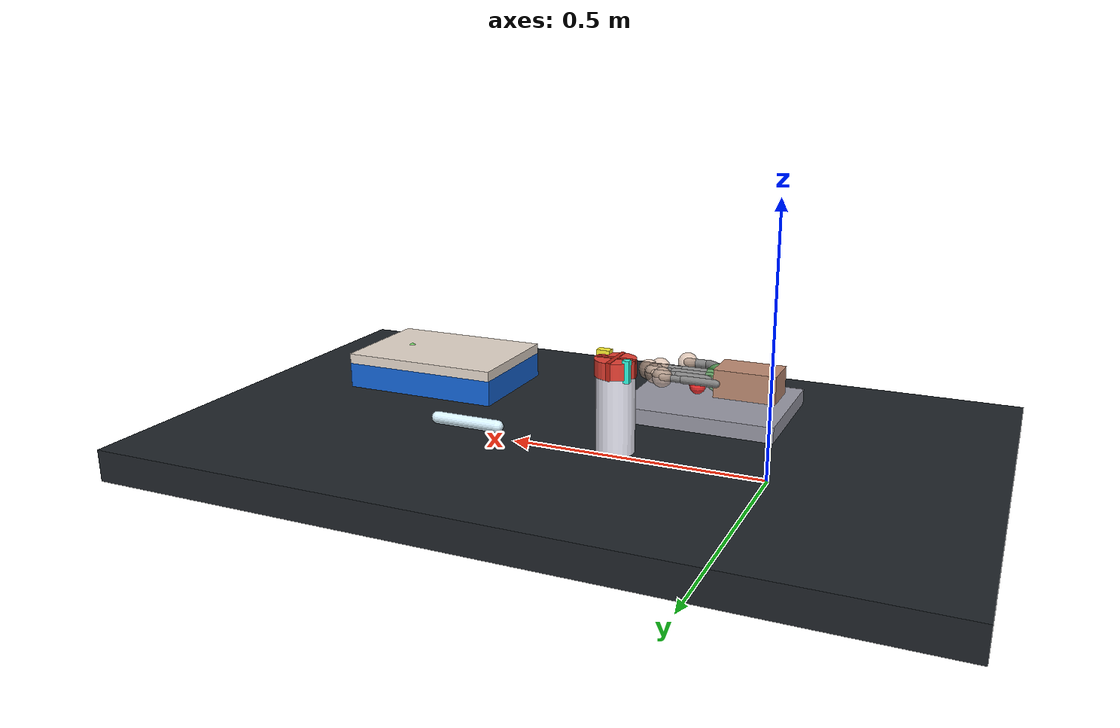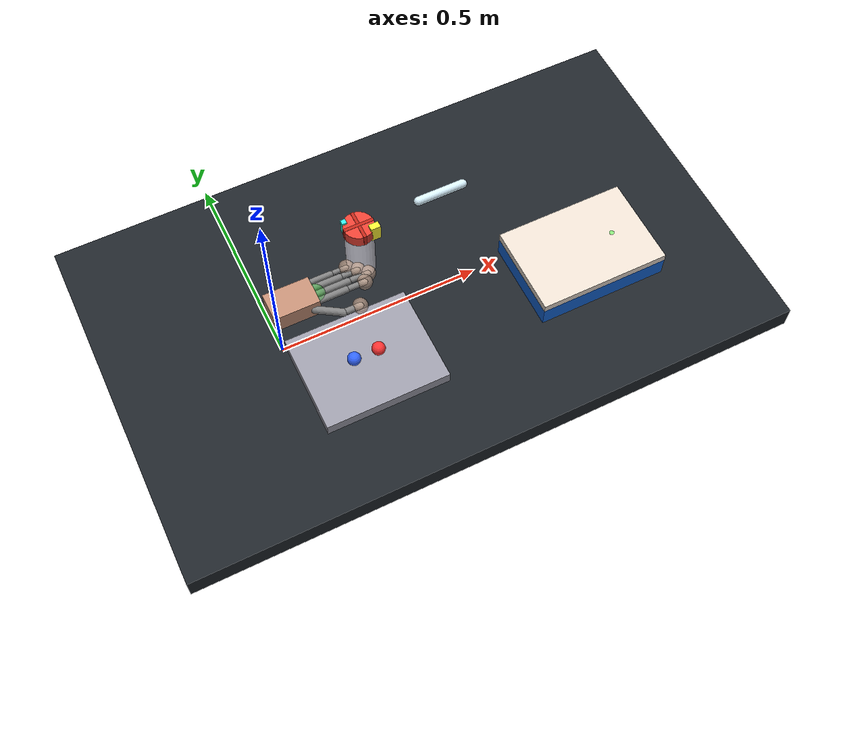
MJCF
<mujoco model="dexterous_emergency_kit_lab">
  <compiler angle="degree" meshdir="assets"/>
  <option timestep="0.002" integrator="RK4" gravity="0 0 -9.81" iterations="100"/>
  <visual><global offwidth="1280" offheight="720"/></visual>
  <default>
    <joint damping="1.0" armature="0.02"/>
    <geom friction="8 5 0.6" solref="0.005 1" solimp="0.99 0.99 0.001"/>
  </default>
  <worldbody>
    <light pos="0 -3 4" dir="0 1 -1"/>
    <camera name="overhead" pos="0.35 0 3.2" xyaxes="1 0 0 0 1 0"/>
    <camera name="side" pos="0.35 -2.2 0.7" xyaxes="1 0 0 0 0 1"/>
    <camera name="closeup" mode="targetbody" target="dex_hand_base" pos="0.08 -0.25 0.10"/>

    <geom name="table" type="box" size="0.75 0.45 0.03" pos="0.35 0 0.02" rgba="0.12 0.14 0.16 1"/>
    <geom name="pill_tray" type="box" size="0.15 0.12 0.015" pos="0.15 -0.15 0.075" rgba="0.6 0.6 0.65 1"/>

    <body name="pill_red" pos="0.18 -0.15 0.11">
      <joint name="pill_red_f" type="free" damping="0.2"/>
      <geom type="sphere" size="0.016" rgba="1 0.2 0.2 1" mass="0.003"/>
    </body>
    <body name="pill_blue" pos="0.12 -0.15 0.11">
      <joint name="pill_blue_f" type="free" damping="0.2"/>
      <geom type="sphere" size="0.016" rgba="0.2 0.4 1 1" mass="0.003"/>
    </body>

    <body name="kit_box" pos="0.72 -0.12 0.06">
      <geom name="kit_base" type="box" size="0.16 0.11 0.025" pos="0 0 0.025" rgba="0.08 0.4 0.85 1"/>
      <geom type="box" size="0.06 0.09 0.018" pos="-0.05 0 0.04" rgba="0.15 0.45 0.85 0.7"/>
      <geom type="box" size="0.025 0.09 0.018" pos="0.07 0 0.04" rgba="0.15 0.45 0.85 0.7"/>
      <body name="kit_lid" pos="0 0 0.05">
        <joint name="lid_hinge" type="hinge" axis="0 1 0" range="0 90" damping="0.5"/>
        <geom name="lid_geom" type="box" size="0.16 0.11 0.01" pos="0 0 0.01" rgba="0.9 0.85 0.8 1"/>
        <site name="lid_touch_site" pos="0.08 0 0.015" size="0.008" type="sphere" rgba="0 1 0 0.4"/>
      </body>
    </body>

    <body name="medicine_vial" pos="0.25 0.10 0.13">
      <joint name="vial_free" type="free" damping="0.15"/>
      <geom name="vial_body" type="cylinder" size="0.035 0.075" rgba="0.9 0.9 0.95 1" mass="0.05" friction="12 8 0.8"/>
    </body>

    <body name="medicine_cap" pos="0.25 0.10 0.21">
      <joint name="cap_free" type="free" damping="0.3"/>
      <geom name="cap_geom" type="cylinder" size="0.037 0.015" rgba="0.9 0.25 0.2 1" mass="0.008" friction="12 8 0.6"/>
      <geom type="box" size="0.037 0.004 0.016" pos="0 0 0" rgba="0.75 0.15 0.1 1"/>
      <geom type="box" size="0.004 0.037 0.016" pos="0 0 0" rgba="0.75 0.15 0.1 1"/>
      <geom name="cap_notch" type="box" size="0.012 0.008 0.022" pos="0.030 -0.022 0" rgba="1 0.95 0.2 1"/>
      <geom name="cap_notch2" type="box" size="0.006 0.006 0.020" pos="-0.028 0.020 0" rgba="0.2 1 0.9 1"/>
    </body>

    <body name="syringe" pos="0.50 0.18 0.10">
      <joint name="syringe_free" type="free" damping="0.18"/>
      <geom type="capsule" fromto="-0.06 0 0 0.06 0 0" size="0.011" rgba="0.85 0.95 1 1" mass="0.02" friction="12 8 0.6"/>
    </body>

    <!-- 5-finger hand with SPHERE TIPS for contact grasping -->
    <body name="dex_hand_base" pos="0.04 0.0 0.18">
      <joint name="arm_x" type="slide" axis="1 0 0" range="0 0.9"/>
      <joint name="arm_y" type="slide" axis="0 1 0" range="-0.3 0.3"/>
      <joint name="arm_z" type="slide" axis="0 0 1" range="-0.15 0.3"/>
      <joint name="wrist_yaw" type="hinge" axis="0 0 1" range="-45 45" damping="0.4"/>
      <joint name="wrist_pitch" type="hinge" axis="0 1 0" range="-45 45" damping="0.4"/>
      <geom type="box" size="0.055 0.035 0.025" rgba="0.75 0.55 0.45 1"/>
      <site name="palm_site" pos="0.055 0 0" size="0.025" type="sphere" rgba="0 1 0 0.25"/>

      <body name="thumb" pos="0.04 -0.035 0">
        <joint name="thumb_abd" type="hinge" axis="0 0 1" range="-35 35"/>
        <geom type="capsule" fromto="0 0 0 .055 -.035 0" size=".009" friction="15 10 0.8"/>
        <body pos=".055 -.035 0">
          <joint name="thumb_pip" type="hinge" axis="0 1 0" range="0 90"/>
          <geom type="capsule" fromto="0 0 0 .04 0 0" size=".008" friction="15 10 0.8"/>
          <geom name="thumb_tip" type="sphere" pos=".04 0 0" size=".018" rgba="0.85 0.7 0.6 0.6" friction="20 15 0.8"/>
        </body>
      </body>

      <body name="index" pos="0.055 -0.018 0">
        <joint name="index_mcp" type="hinge" axis="0 1 0" range="0 100"/>
        <geom type="capsule" fromto="0 0 0 .07 0 0" size=".008" friction="15 10 0.8"/>
        <body pos=".07 0 0">
          <joint name="index_pip" type="hinge" axis="0 1 0" range="0 100"/>
          <geom type="capsule" fromto="0 0 0 .045 0 0" size=".007" friction="15 10 0.8"/>
          <geom name="index_tip" type="sphere" pos=".045 0 0" size=".018" rgba="0.85 0.7 0.6 0.6" friction="20 15 0.8"/>
          <site name="index_tip_site" pos=".045 0 0" size=".006" type="sphere" rgba="0 1 0 .35"/>
        </body>
      </body>

      <body name="middle" pos="0.06 0 0">
        <joint name="middle_mcp" type="hinge" axis="0 1 0" range="0 100"/>
        <geom type="capsule" fromto="0 0 0 .078 0 0" size=".008" friction="15 10 0.8"/>
        <body pos=".078 0 0">
          <joint name="middle_pip" type="hinge" axis="0 1 0" range="0 100"/>
          <geom type="capsule" fromto="0 0 0 .048 0 0" size=".007" friction="15 10 0.8"/>
          <geom name="middle_tip" type="sphere" pos=".048 0 0" size=".018" rgba="0.85 0.7 0.6 0.6" friction="20 15 0.8"/>
          <site name="middle_tip_site" pos=".048 0 0" size=".006" type="sphere" rgba="0 1 0 .35"/>
        </body>
      </body>

      <body name="ring" pos="0.055 0.018 0">
        <joint name="ring_mcp" type="hinge" axis="0 1 0" range="0 100"/>
        <geom type="capsule" fromto="0 0 0 .07 0 0" size=".008" friction="15 10 0.8"/>
        <body pos=".07 0 0">
          <joint name="ring_pip" type="hinge" axis="0 1 0" range="0 100"/>
          <geom type="capsule" fromto="0 0 0 .043 0 0" size=".007" friction="15 10 0.8"/>
          <geom name="ring_tip" type="sphere" pos=".043 0 0" size=".018" rgba="0.85 0.7 0.6 0.6" friction="20 15 0.8"/>
        </body>
      </body>

      <body name="little" pos="0.05 0.035 0">
        <joint name="little_mcp" type="hinge" axis="0 1 0" range="0 100"/>
        <geom type="capsule" fromto="0 0 0 .06 0 0" size=".007" friction="15 10 0.8"/>
        <body pos=".06 0 0">
          <joint name="little_pip" type="hinge" axis="0 1 0" range="0 100"/>
          <geom type="capsule" fromto="0 0 0 .038 0 0" size=".006" friction="15 10 0.8"/>
          <geom name="little_tip" type="sphere" pos=".038 0 0" size=".018" rgba="0.85 0.7 0.6 0.6" friction="20 15 0.8"/>
        </body>
      </body>
    </body>
  </worldbody>
  <actuator>
    <position joint="arm_x" kp="220"/><position joint="arm_y" kp="220"/><position joint="arm_z" kp="220"/>
    <position joint="wrist_yaw" kp="35"/><position joint="wrist_pitch" kp="35"/>
    <position joint="thumb_abd" kp="15"/><position joint="thumb_pip" kp="15"/>
    <position joint="index_mcp" kp="15"/><position joint="index_pip" kp="15"/>
    <position joint="middle_mcp" kp="15"/><position joint="middle_pip" kp="15"/>
    <position joint="ring_mcp" kp="15"/><position joint="ring_pip" kp="15"/>
    <position joint="little_mcp" kp="15"/><position joint="little_pip" kp="15"/>
  </actuator>
  <sensor>
    <touch name="palm_touch" site="palm_site"/>
    <touch name="index_tip_touch" site="index_tip_site"/>
    <touch name="middle_tip_touch" site="middle_tip_site"/>
    <touch name="lid_touch" site="lid_touch_site"/>
    <jointpos name="arm_x_pos" joint="arm_x"/><jointpos name="arm_y_pos" joint="arm_y"/><jointpos name="arm_z_pos" joint="arm_z"/>
    <jointpos name="wrist_yaw_pos" joint="wrist_yaw"/><jointpos name="wrist_pitch_pos" joint="wrist_pitch"/>
    <jointpos name="thumb_abd_pos" joint="thumb_abd"/><jointpos name="thumb_pip_pos" joint="thumb_pip"/>
    <jointpos name="index_mcp_pos" joint="index_mcp"/><jointpos name="index_pip_pos" joint="index_pip"/>
    <jointpos name="middle_mcp_pos" joint="middle_mcp"/><jointpos name="middle_pip_pos" joint="middle_pip"/>
    <jointpos name="ring_mcp_pos" joint="ring_mcp"/><jointpos name="ring_pip_pos" joint="ring_pip"/>
    <jointpos name="little_mcp_pos" joint="little_mcp"/><jointpos name="little_pip_pos" joint="little_pip"/>
  </sensor>
</mujoco>
